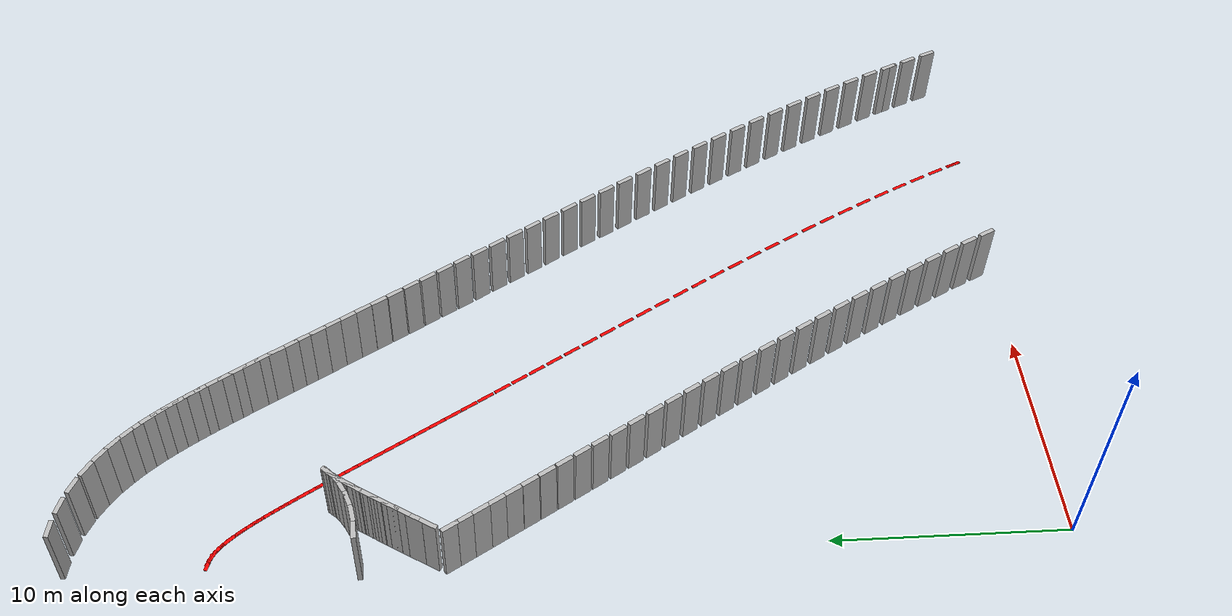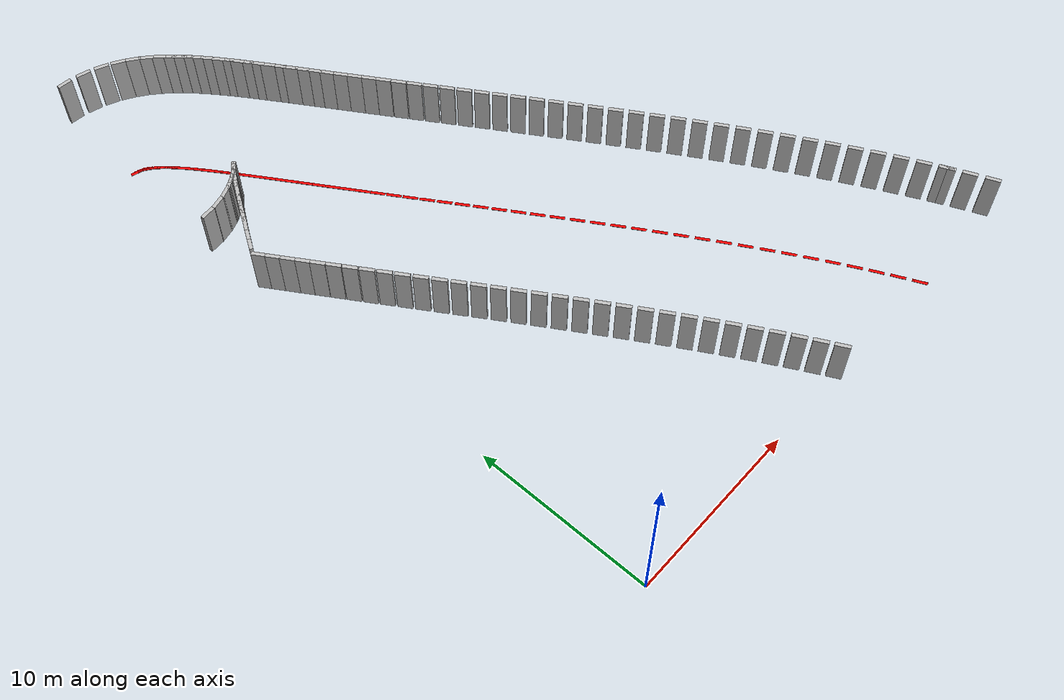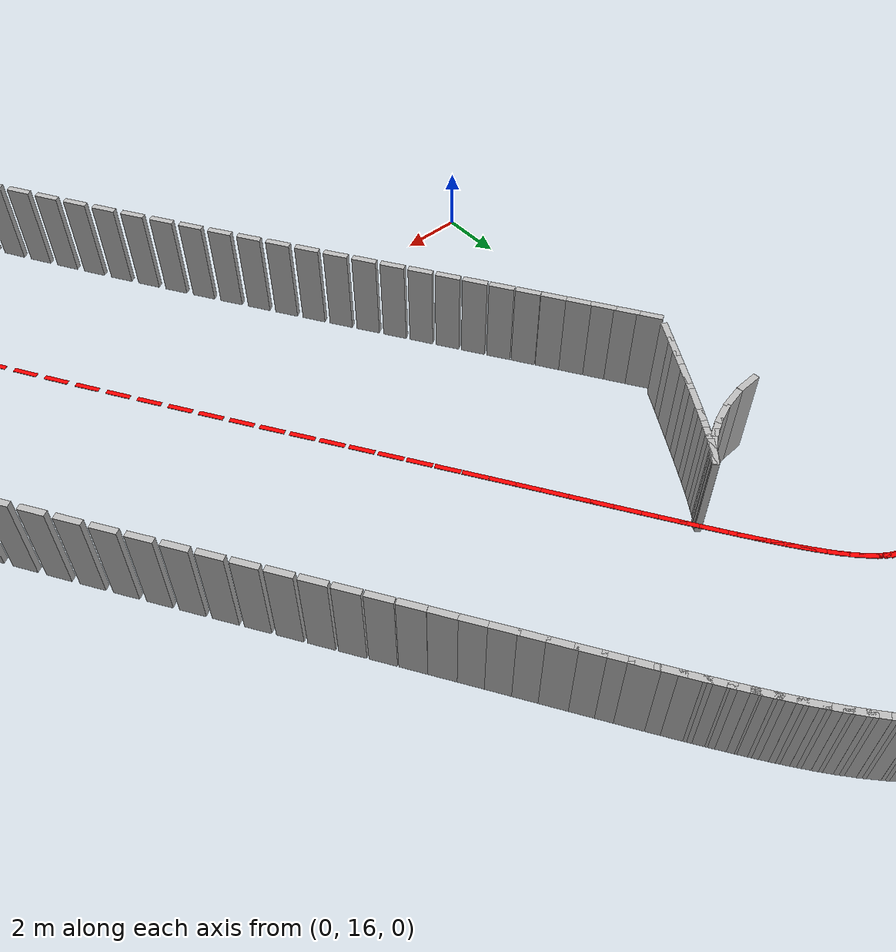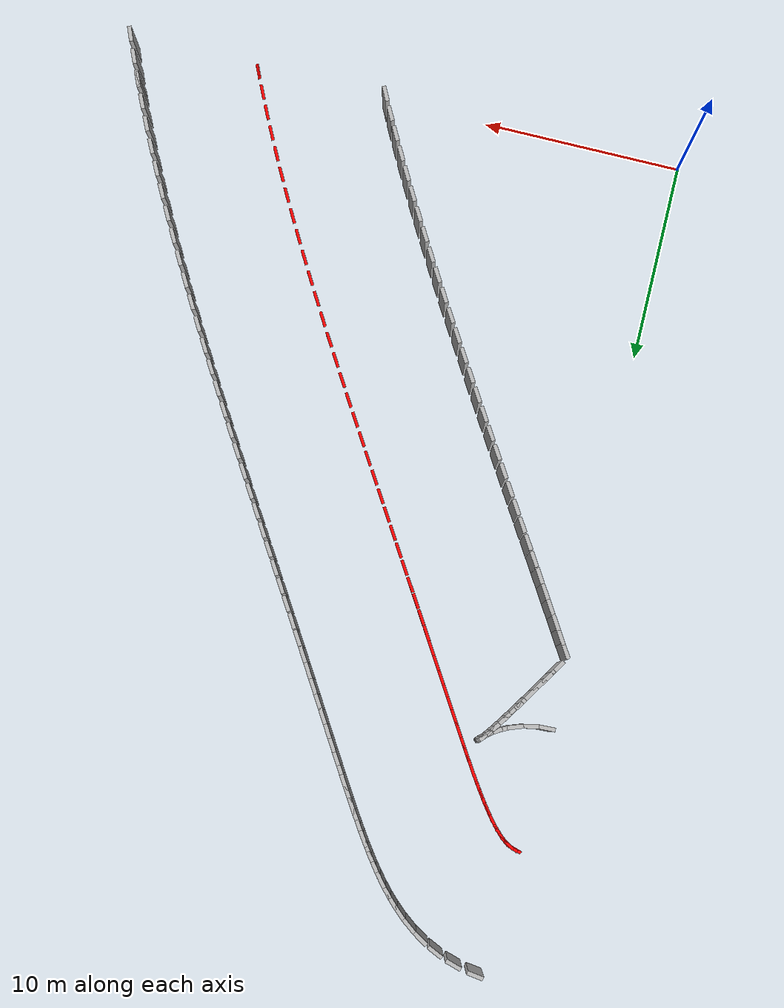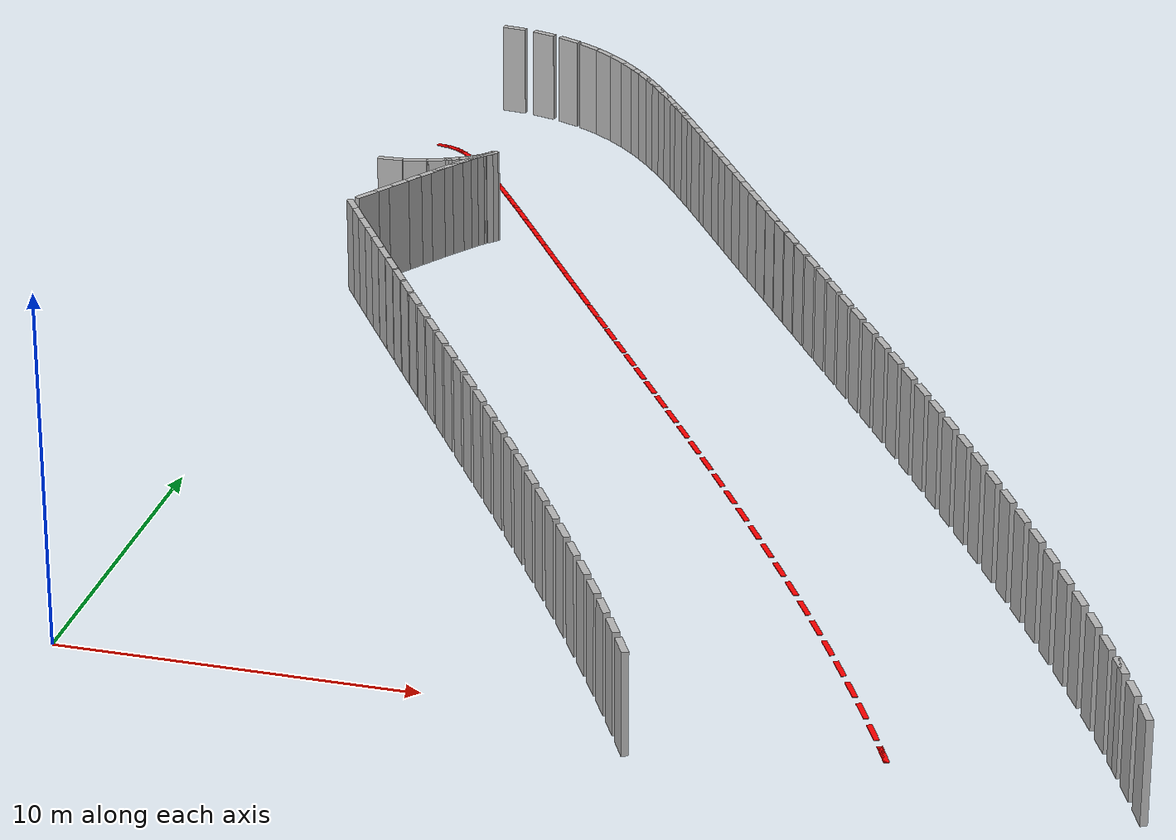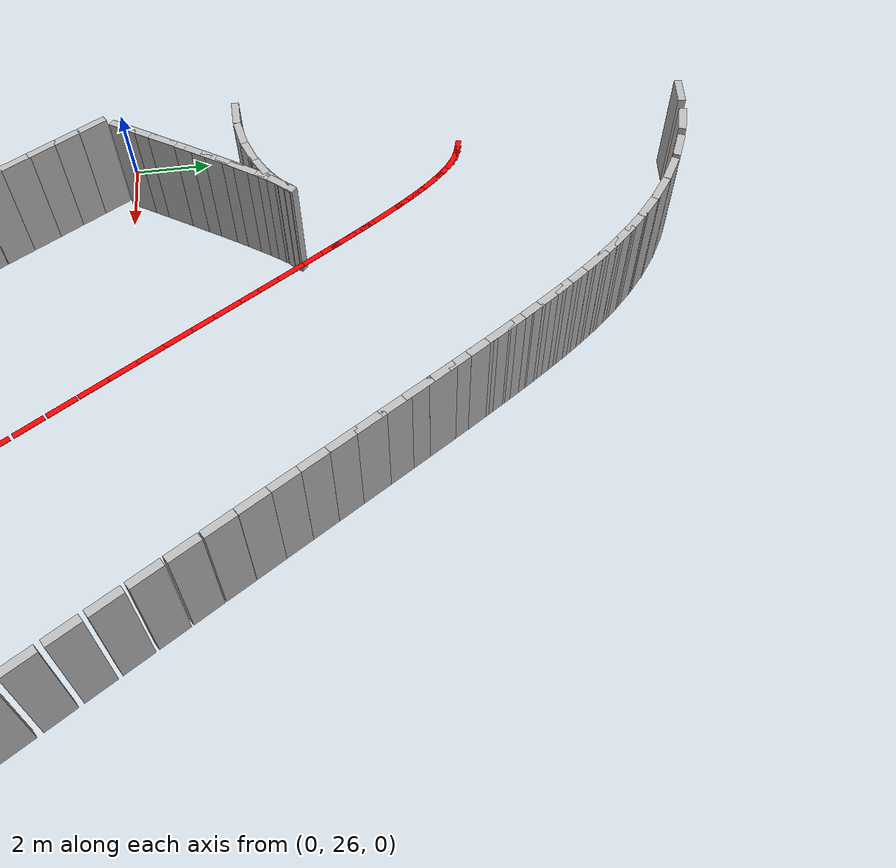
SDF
<sdf version="1.7">
 <model name="track_walls">
  <static>true</static>
  <link name="left_0">
   <pose>27.476 2.453 0.5 0 0 -1.150</pose>
   <collision name="c"><geometry><box><size>0.8 0.2 3.0</size></box></geometry></collision>
   <visual name="v"><geometry><box><size>0.8 0.2 3.0</size></box></geometry></visual>
  </link>
  <link name="center_0">
   <pose>22.000 -0.000 0.010 0 0 -1.150</pose>
   <visual name="v">
    <geometry><box><size>0.8 0.15 0.02</size></box></geometry>
    <material><ambient>1 0 0 1</ambient><diffuse>1 0 0 1</diffuse></material>
   </visual>
  </link>
  <link name="left_1">
   <pose>27.945 1.405 0.5 0 0 -1.158</pose>
   <collision name="c"><geometry><box><size>0.8 0.2 3.0</size></box></geometry></collision>
   <visual name="v"><geometry><box><size>0.8 0.2 3.0</size></box></geometry></visual>
  </link>
  <link name="left_2">
   <pose>28.415 0.310 0.5 0 0 -1.174</pose>
   <collision name="c"><geometry><box><size>0.8 0.2 3.0</size></box></geometry></collision>
   <visual name="v"><geometry><box><size>0.8 0.2 3.0</size></box></geometry></visual>
  </link>
  <link name="right_144">
   <pose>0.351 26.072 0.5 0 0 1.011</pose>
   <collision name="c"><geometry><box><size>0.8 0.2 3.0</size></box></geometry></collision>
   <visual name="v"><geometry><box><size>0.8 0.2 3.0</size></box></geometry></visual>
  </link>
  <link name="right_145">
   <pose>0.684 26.604 0.5 0 0 1.010</pose>
   <collision name="c"><geometry><box><size>0.8 0.2 3.0</size></box></geometry></collision>
   <visual name="v"><geometry><box><size>0.8 0.2 3.0</size></box></geometry></visual>
  </link>
  <link name="right_146">
   <pose>1.001 27.106 0.5 0 0 1.007</pose>
   <collision name="c"><geometry><box><size>0.8 0.2 3.0</size></box></geometry></collision>
   <visual name="v"><geometry><box><size>0.8 0.2 3.0</size></box></geometry></visual>
  </link>
  <link name="right_147">
   <pose>1.300 27.578 0.5 0 0 1.004</pose>
   <collision name="c"><geometry><box><size>0.8 0.2 3.0</size></box></geometry></collision>
   <visual name="v"><geometry><box><size>0.8 0.2 3.0</size></box></geometry></visual>
  </link>
  <link name="right_148">
   <pose>1.581 28.018 0.5 0 0 0.999</pose>
   <collision name="c"><geometry><box><size>0.8 0.2 3.0</size></box></geometry></collision>
   <visual name="v"><geometry><box><size>0.8 0.2 3.0</size></box></geometry></visual>
  </link>
  <link name="right_149">
   <pose>1.844 28.424 0.5 0 0 0.993</pose>
   <collision name="c"><geometry><box><size>0.8 0.2 3.0</size></box></geometry></collision>
   <visual name="v"><geometry><box><size>0.8 0.2 3.0</size></box></geometry></visual>
  </link>
  <link name="right_150">
   <pose>2.087 28.794 0.5 0 0 0.984</pose>
   <collision name="c"><geometry><box><size>0.8 0.2 3.0</size></box></geometry></collision>
   <visual name="v"><geometry><box><size>0.8 0.2 3.0</size></box></geometry></visual>
  </link>
  <link name="right_151">
   <pose>2.310 29.125 0.5 0 0 0.973</pose>
   <collision name="c"><geometry><box><size>0.8 0.2 3.0</size></box></geometry></collision>
   <visual name="v"><geometry><box><size>0.8 0.2 3.0</size></box></geometry></visual>
  </link>
  <link name="right_152">
   <pose>2.510 29.415 0.5 0 0 0.959</pose>
   <collision name="c"><geometry><box><size>0.8 0.2 3.0</size></box></geometry></collision>
   <visual name="v"><geometry><box><size>0.8 0.2 3.0</size></box></geometry></visual>
  </link>
  <link name="right_153">
   <pose>2.684 29.659 0.5 0 0 0.941</pose>
   <collision name="c"><geometry><box><size>0.8 0.2 3.0</size></box></geometry></collision>
   <visual name="v"><geometry><box><size>0.8 0.2 3.0</size></box></geometry></visual>
  </link>
  <link name="right_154">
   <pose>2.830 29.855 0.5 0 0 0.918</pose>
   <collision name="c"><geometry><box><size>0.8 0.2 3.0</size></box></geometry></collision>
   <visual name="v"><geometry><box><size>0.8 0.2 3.0</size></box></geometry></visual>
  </link>
  <link name="right_155">
   <pose>2.941 29.998 0.5 0 0 0.890</pose>
   <collision name="c"><geometry><box><size>0.8 0.2 3.0</size></box></geometry></collision>
   <visual name="v"><geometry><box><size>0.8 0.2 3.0</size></box></geometry></visual>
  </link>
  <link name="right_156">
   <pose>3.012 30.082 0.5 0 0 0.854</pose>
   <collision name="c"><geometry><box><size>0.8 0.2 3.0</size></box></geometry></collision>
   <visual name="v"><geometry><box><size>0.8 0.2 3.0</size></box></geometry></visual>
  </link>
  <link name="right_157">
   <pose>3.031 30.104 0.5 0 0 0.809</pose>
   <collision name="c"><geometry><box><size>0.8 0.2 3.0</size></box></geometry></collision>
   <visual name="v"><geometry><box><size>0.8 0.2 3.0</size></box></geometry></visual>
  </link>
  <link name="right_158">
   <pose>2.984 30.058 0.5 0 0 0.752</pose>
   <collision name="c"><geometry><box><size>0.8 0.2 3.0</size></box></geometry></collision>
   <visual name="v"><geometry><box><size>0.8 0.2 3.0</size></box></geometry></visual>
  </link>
  <link name="right_159">
   <pose>2.851 29.943 0.5 0 0 0.681</pose>
   <collision name="c"><geometry><box><size>0.8 0.2 3.0</size></box></geometry></collision>
   <visual name="v"><geometry><box><size>0.8 0.2 3.0</size></box></geometry></visual>
  </link>
  <link name="right_160">
   <pose>2.609 29.765 0.5 0 0 0.593</pose>
   <collision name="c"><geometry><box><size>0.8 0.2 3.0</size></box></geometry></collision>
   <visual name="v"><geometry><box><size>0.8 0.2 3.0</size></box></geometry></visual>
  </link>
  <link name="right_161">
   <pose>2.231 29.539 0.5 0 0 0.485</pose>
   <collision name="c"><geometry><box><size>0.8 0.2 3.0</size></box></geometry></collision>
   <visual name="v"><geometry><box><size>0.8 0.2 3.0</size></box></geometry></visual>
  </link>
  <link name="right_162">
   <pose>1.695 29.301 0.5 0 0 0.355</pose>
   <collision name="c"><geometry><box><size>0.8 0.2 3.0</size></box></geometry></collision>
   <visual name="v"><geometry><box><size>0.8 0.2 3.0</size></box></geometry></visual>
  </link>
  <link name="right_163">
   <pose>1.006 29.103 0.5 0 0 0.205</pose>
   <collision name="c"><geometry><box><size>0.8 0.2 3.0</size></box></geometry></collision>
   <visual name="v"><geometry><box><size>0.8 0.2 3.0</size></box></geometry></visual>
  </link>
  <link name="right_164">
   <pose>0.207 29.004 0.5 0 0 0.042</pose>
   <collision name="c"><geometry><box><size>0.8 0.2 3.0</size></box></geometry></collision>
   <visual name="v"><geometry><box><size>0.8 0.2 3.0</size></box></geometry></visual>
  </link>
  <link name="left_165">
   <pose>0.874 40.945 0.5 0 0 -0.125</pose>
   <collision name="c"><geometry><box><size>0.8 0.2 3.0</size></box></geometry></collision>
   <visual name="v"><geometry><box><size>0.8 0.2 3.0</size></box></geometry></visual>
  </link>
  <link name="left_166">
   <pose>1.973 40.719 0.5 0 0 -0.282</pose>
   <collision name="c"><geometry><box><size>0.8 0.2 3.0</size></box></geometry></collision>
   <visual name="v"><geometry><box><size>0.8 0.2 3.0</size></box></geometry></visual>
  </link>
  <link name="center_166">
   <pose>0.302 34.956 0.010 0 0 -0.282</pose>
   <visual name="v">
    <geometry><box><size>0.8 0.15 0.02</size></box></geometry>
    <material><ambient>1 0 0 1</ambient><diffuse>1 0 0 1</diffuse></material>
   </visual>
  </link>
  <link name="left_167">
   <pose>2.937 40.364 0.5 0 0 -0.422</pose>
   <collision name="c"><geometry><box><size>0.8 0.2 3.0</size></box></geometry></collision>
   <visual name="v"><geometry><box><size>0.8 0.2 3.0</size></box></geometry></visual>
  </link>
  <link name="center_167">
   <pose>0.477 34.891 0.010 0 0 -0.422</pose>
   <visual name="v">
    <geometry><box><size>0.8 0.15 0.02</size></box></geometry>
    <material><ambient>1 0 0 1</ambient><diffuse>1 0 0 1</diffuse></material>
   </visual>
  </link>
  <link name="left_168">
   <pose>3.747 39.939 0.5 0 0 -0.542</pose>
   <collision name="c"><geometry><box><size>0.8 0.2 3.0</size></box></geometry></collision>
   <visual name="v"><geometry><box><size>0.8 0.2 3.0</size></box></geometry></visual>
  </link>
  <link name="center_168">
   <pose>0.654 34.798 0.010 0 0 -0.542</pose>
   <visual name="v">
    <geometry><box><size>0.8 0.15 0.02</size></box></geometry>
    <material><ambient>1 0 0 1</ambient><diffuse>1 0 0 1</diffuse></material>
   </visual>
  </link>
  <link name="left_169">
   <pose>4.416 39.490 0.5 0 0 -0.640</pose>
   <collision name="c"><geometry><box><size>0.8 0.2 3.0</size></box></geometry></collision>
   <visual name="v"><geometry><box><size>0.8 0.2 3.0</size></box></geometry></visual>
  </link>
  <link name="center_169">
   <pose>0.835 34.675 0.010 0 0 -0.640</pose>
   <visual name="v">
    <geometry><box><size>0.8 0.15 0.02</size></box></geometry>
    <material><ambient>1 0 0 1</ambient><diffuse>1 0 0 1</diffuse></material>
   </visual>
  </link>
  <link name="left_170">
   <pose>4.971 39.041 0.5 0 0 -0.719</pose>
   <collision name="c"><geometry><box><size>0.8 0.2 3.0</size></box></geometry></collision>
   <visual name="v"><geometry><box><size>0.8 0.2 3.0</size></box></geometry></visual>
  </link>
  <link name="center_170">
   <pose>1.021 34.525 0.010 0 0 -0.719</pose>
   <visual name="v">
    <geometry><box><size>0.8 0.15 0.02</size></box></geometry>
    <material><ambient>1 0 0 1</ambient><diffuse>1 0 0 1</diffuse></material>
   </visual>
  </link>
  <link name="left_171">
   <pose>5.441 38.602 0.5 0 0 -0.782</pose>
   <collision name="c"><geometry><box><size>0.8 0.2 3.0</size></box></geometry></collision>
   <visual name="v"><geometry><box><size>0.8 0.2 3.0</size></box></geometry></visual>
  </link>
  <link name="center_171">
   <pose>1.212 34.346 0.010 0 0 -0.782</pose>
   <visual name="v">
    <geometry><box><size>0.8 0.15 0.02</size></box></geometry>
    <material><ambient>1 0 0 1</ambient><diffuse>1 0 0 1</diffuse></material>
   </visual>
  </link>
  <link name="left_172">
   <pose>5.849 38.176 0.5 0 0 -0.833</pose>
   <collision name="c"><geometry><box><size>0.8 0.2 3.0</size></box></geometry></collision>
   <visual name="v"><geometry><box><size>0.8 0.2 3.0</size></box></geometry></visual>
  </link>
  <link name="center_172">
   <pose>1.410 34.138 0.010 0 0 -0.833</pose>
   <visual name="v">
    <geometry><box><size>0.8 0.15 0.02</size></box></geometry>
    <material><ambient>1 0 0 1</ambient><diffuse>1 0 0 1</diffuse></material>
   </visual>
  </link>
  <link name="left_173">
   <pose>6.213 37.758 0.5 0 0 -0.873</pose>
   <collision name="c"><geometry><box><size>0.8 0.2 3.0</size></box></geometry></collision>
   <visual name="v"><geometry><box><size>0.8 0.2 3.0</size></box></geometry></visual>
  </link>
  <link name="center_173">
   <pose>1.615 33.903 0.010 0 0 -0.873</pose>
   <visual name="v">
    <geometry><box><size>0.8 0.15 0.02</size></box></geometry>
    <material><ambient>1 0 0 1</ambient><diffuse>1 0 0 1</diffuse></material>
   </visual>
  </link>
  <link name="left_174">
   <pose>6.547 37.346 0.5 0 0 -0.905</pose>
   <collision name="c"><geometry><box><size>0.8 0.2 3.0</size></box></geometry></collision>
   <visual name="v"><geometry><box><size>0.8 0.2 3.0</size></box></geometry></visual>
  </link>
  <link name="center_174">
   <pose>1.828 33.640 0.010 0 0 -0.905</pose>
   <visual name="v">
    <geometry><box><size>0.8 0.15 0.02</size></box></geometry>
    <material><ambient>1 0 0 1</ambient><diffuse>1 0 0 1</diffuse></material>
   </visual>
  </link>
  <link name="left_175">
   <pose>6.862 36.933 0.5 0 0 -0.930</pose>
   <collision name="c"><geometry><box><size>0.8 0.2 3.0</size></box></geometry></collision>
   <visual name="v"><geometry><box><size>0.8 0.2 3.0</size></box></geometry></visual>
  </link>
  <link name="center_175">
   <pose>2.051 33.348 0.010 0 0 -0.930</pose>
   <visual name="v">
    <geometry><box><size>0.8 0.15 0.02</size></box></geometry>
    <material><ambient>1 0 0 1</ambient><diffuse>1 0 0 1</diffuse></material>
   </visual>
  </link>
  <link name="left_176">
   <pose>7.165 36.517 0.5 0 0 -0.951</pose>
   <collision name="c"><geometry><box><size>0.8 0.2 3.0</size></box></geometry></collision>
   <visual name="v"><geometry><box><size>0.8 0.2 3.0</size></box></geometry></visual>
  </link>
  <link name="center_176">
   <pose>2.282 33.030 0.010 0 0 -0.951</pose>
   <visual name="v">
    <geometry><box><size>0.8 0.15 0.02</size></box></geometry>
    <material><ambient>1 0 0 1</ambient><diffuse>1 0 0 1</diffuse></material>
   </visual>
  </link>
  <link name="left_177">
   <pose>7.462 36.093 0.5 0 0 -0.967</pose>
   <collision name="c"><geometry><box><size>0.8 0.2 3.0</size></box></geometry></collision>
   <visual name="v"><geometry><box><size>0.8 0.2 3.0</size></box></geometry></visual>
  </link>
  <link name="center_177">
   <pose>2.525 32.684 0.010 0 0 -0.967</pose>
   <visual name="v">
    <geometry><box><size>0.8 0.15 0.02</size></box></geometry>
    <material><ambient>1 0 0 1</ambient><diffuse>1 0 0 1</diffuse></material>
   </visual>
  </link>
  <link name="left_178">
   <pose>7.758 35.659 0.5 0 0 -0.979</pose>
   <collision name="c"><geometry><box><size>0.8 0.2 3.0</size></box></geometry></collision>
   <visual name="v"><geometry><box><size>0.8 0.2 3.0</size></box></geometry></visual>
  </link>
  <link name="center_178">
   <pose>2.778 32.312 0.010 0 0 -0.979</pose>
   <visual name="v">
    <geometry><box><size>0.8 0.15 0.02</size></box></geometry>
    <material><ambient>1 0 0 1</ambient><diffuse>1 0 0 1</diffuse></material>
   </visual>
  </link>
  <link name="left_179">
   <pose>8.055 35.211 0.5 0 0 -0.989</pose>
   <collision name="c"><geometry><box><size>0.8 0.2 3.0</size></box></geometry></collision>
   <visual name="v"><geometry><box><size>0.8 0.2 3.0</size></box></geometry></visual>
  </link>
  <link name="center_179">
   <pose>3.044 31.913 0.010 0 0 -0.989</pose>
   <visual name="v">
    <geometry><box><size>0.8 0.15 0.02</size></box></geometry>
    <material><ambient>1 0 0 1</ambient><diffuse>1 0 0 1</diffuse></material>
   </visual>
  </link>
  <link name="left_180">
   <pose>8.357 34.749 0.5 0 0 -0.996</pose>
   <collision name="c"><geometry><box><size>0.8 0.2 3.0</size></box></geometry></collision>
   <visual name="v"><geometry><box><size>0.8 0.2 3.0</size></box></geometry></visual>
  </link>
  <link name="center_180">
   <pose>3.321 31.487 0.010 0 0 -0.996</pose>
   <visual name="v">
    <geometry><box><size>0.8 0.15 0.02</size></box></geometry>
    <material><ambient>1 0 0 1</ambient><diffuse>1 0 0 1</diffuse></material>
   </visual>
  </link>
  <link name="left_181">
   <pose>8.666 34.269 0.5 0 0 -1.002</pose>
   <collision name="c"><geometry><box><size>0.8 0.2 3.0</size></box></geometry></collision>
   <visual name="v"><geometry><box><size>0.8 0.2 3.0</size></box></geometry></visual>
  </link>
  <link name="center_181">
   <pose>3.611 31.036 0.010 0 0 -1.002</pose>
   <visual name="v">
    <geometry><box><size>0.8 0.15 0.02</size></box></geometry>
    <material><ambient>1 0 0 1</ambient><diffuse>1 0 0 1</diffuse></material>
   </visual>
  </link>
  <link name="left_182">
   <pose>8.982 33.771 0.5 0 0 -1.006</pose>
   <collision name="c"><geometry><box><size>0.8 0.2 3.0</size></box></geometry></collision>
   <visual name="v"><geometry><box><size>0.8 0.2 3.0</size></box></geometry></visual>
  </link>
  <link name="center_182">
   <pose>3.915 30.559 0.010 0 0 -1.006</pose>
   <visual name="v">
    <geometry><box><size>0.8 0.15 0.02</size></box></geometry>
    <material><ambient>1 0 0 1</ambient><diffuse>1 0 0 1</diffuse></material>
   </visual>
  </link>
  <link name="left_183">
   <pose>9.309 33.255 0.5 0 0 -1.009</pose>
   <collision name="c"><geometry><box><size>0.8 0.2 3.0</size></box></geometry></collision>
   <visual name="v"><geometry><box><size>0.8 0.2 3.0</size></box></geometry></visual>
  </link>
  <link name="center_183">
   <pose>4.232 30.057 0.010 0 0 -1.009</pose>
   <visual name="v">
    <geometry><box><size>0.8 0.15 0.02</size></box></geometry>
    <material><ambient>1 0 0 1</ambient><diffuse>1 0 0 1</diffuse></material>
   </visual>
  </link>
  <link name="left_184">
   <pose>9.646 32.718 0.5 0 0 -1.011</pose>
   <collision name="c"><geometry><box><size>0.8 0.2 3.0</size></box></geometry></collision>
   <visual name="v"><geometry><box><size>0.8 0.2 3.0</size></box></geometry></visual>
  </link>
  <link name="center_184">
   <pose>4.563 29.530 0.010 0 0 -1.011</pose>
   <visual name="v">
    <geometry><box><size>0.8 0.15 0.02</size></box></geometry>
    <material><ambient>1 0 0 1</ambient><diffuse>1 0 0 1</diffuse></material>
   </visual>
  </link>
  <link name="left_185">
   <pose>9.995 32.161 0.5 0 0 -1.012</pose>
   <collision name="c"><geometry><box><size>0.8 0.2 3.0</size></box></geometry></collision>
   <visual name="v"><geometry><box><size>0.8 0.2 3.0</size></box></geometry></visual>
  </link>
  <link name="center_185">
   <pose>4.908 28.979 0.010 0 0 -1.012</pose>
   <visual name="v">
    <geometry><box><size>0.8 0.15 0.02</size></box></geometry>
    <material><ambient>1 0 0 1</ambient><diffuse>1 0 0 1</diffuse></material>
   </visual>
  </link>
  <link name="left_186">
   <pose>10.356 31.584 0.5 0 0 -1.012</pose>
   <collision name="c"><geometry><box><size>0.8 0.2 3.0</size></box></geometry></collision>
   <visual name="v"><geometry><box><size>0.8 0.2 3.0</size></box></geometry></visual>
  </link>
  <link name="right_186">
   <pose>0.180 25.224 0.5 0 0 -1.012</pose>
   <collision name="c"><geometry><box><size>0.8 0.2 3.0</size></box></geometry></collision>
   <visual name="v"><geometry><box><size>0.8 0.2 3.0</size></box></geometry></visual>
  </link>
  <link name="center_186">
   <pose>5.268 28.404 0.010 0 0 -1.012</pose>
   <visual name="v">
    <geometry><box><size>0.8 0.15 0.02</size></box></geometry>
    <material><ambient>1 0 0 1</ambient><diffuse>1 0 0 1</diffuse></material>
   </visual>
  </link>
  <link name="left_187">
   <pose>10.730 30.985 0.5 0 0 -1.012</pose>
   <collision name="c"><geometry><box><size>0.8 0.2 3.0</size></box></geometry></collision>
   <visual name="v"><geometry><box><size>0.8 0.2 3.0</size></box></geometry></visual>
  </link>
  <link name="right_187">
   <pose>0.553 24.626 0.5 0 0 -1.012</pose>
   <collision name="c"><geometry><box><size>0.8 0.2 3.0</size></box></geometry></collision>
   <visual name="v"><geometry><box><size>0.8 0.2 3.0</size></box></geometry></visual>
  </link>
  <link name="center_187">
   <pose>5.642 27.806 0.010 0 0 -1.012</pose>
   <visual name="v">
    <geometry><box><size>0.8 0.15 0.02</size></box></geometry>
    <material><ambient>1 0 0 1</ambient><diffuse>1 0 0 1</diffuse></material>
   </visual>
  </link>
  <link name="left_188">
   <pose>11.117 30.365 0.5 0 0 -1.012</pose>
   <collision name="c"><geometry><box><size>0.8 0.2 3.0</size></box></geometry></collision>
   <visual name="v"><geometry><box><size>0.8 0.2 3.0</size></box></geometry></visual>
  </link>
  <link name="right_188">
   <pose>0.942 24.003 0.5 0 0 -1.012</pose>
   <collision name="c"><geometry><box><size>0.8 0.2 3.0</size></box></geometry></collision>
   <visual name="v"><geometry><box><size>0.8 0.2 3.0</size></box></geometry></visual>
  </link>
  <link name="center_188">
   <pose>6.030 27.184 0.010 0 0 -1.012</pose>
   <visual name="v">
    <geometry><box><size>0.8 0.15 0.02</size></box></geometry>
    <material><ambient>1 0 0 1</ambient><diffuse>1 0 0 1</diffuse></material>
   </visual>
  </link>
  <link name="left_189">
   <pose>11.518 29.724 0.5 0 0 -1.011</pose>
   <collision name="c"><geometry><box><size>0.8 0.2 3.0</size></box></geometry></collision>
   <visual name="v"><geometry><box><size>0.8 0.2 3.0</size></box></geometry></visual>
  </link>
  <link name="right_189">
   <pose>1.347 23.357 0.5 0 0 -1.011</pose>
   <collision name="c"><geometry><box><size>0.8 0.2 3.0</size></box></geometry></collision>
   <visual name="v"><geometry><box><size>0.8 0.2 3.0</size></box></geometry></visual>
  </link>
  <link name="center_189">
   <pose>6.432 26.541 0.010 0 0 -1.011</pose>
   <visual name="v">
    <geometry><box><size>0.8 0.15 0.02</size></box></geometry>
    <material><ambient>1 0 0 1</ambient><diffuse>1 0 0 1</diffuse></material>
   </visual>
  </link>
  <link name="left_190">
   <pose>11.933 29.062 0.5 0 0 -1.011</pose>
   <collision name="c"><geometry><box><size>0.8 0.2 3.0</size></box></geometry></collision>
   <visual name="v"><geometry><box><size>0.8 0.2 3.0</size></box></geometry></visual>
  </link>
  <link name="right_190">
   <pose>1.766 22.688 0.5 0 0 -1.011</pose>
   <collision name="c"><geometry><box><size>0.8 0.2 3.0</size></box></geometry></collision>
   <visual name="v"><geometry><box><size>0.8 0.2 3.0</size></box></geometry></visual>
  </link>
  <link name="center_190">
   <pose>6.849 25.875 0.010 0 0 -1.011</pose>
   <visual name="v">
    <geometry><box><size>0.8 0.15 0.02</size></box></geometry>
    <material><ambient>1 0 0 1</ambient><diffuse>1 0 0 1</diffuse></material>
   </visual>
  </link>
  <link name="left_191">
   <pose>12.361 28.379 0.5 0 0 -1.010</pose>
   <collision name="c"><geometry><box><size>0.8 0.2 3.0</size></box></geometry></collision>
   <visual name="v"><geometry><box><size>0.8 0.2 3.0</size></box></geometry></visual>
  </link>
  <link name="right_191">
   <pose>2.199 21.998 0.5 0 0 -1.010</pose>
   <collision name="c"><geometry><box><size>0.8 0.2 3.0</size></box></geometry></collision>
   <visual name="v"><geometry><box><size>0.8 0.2 3.0</size></box></geometry></visual>
  </link>
  <link name="center_191">
   <pose>7.280 25.189 0.010 0 0 -1.010</pose>
   <visual name="v">
    <geometry><box><size>0.8 0.15 0.02</size></box></geometry>
    <material><ambient>1 0 0 1</ambient><diffuse>1 0 0 1</diffuse></material>
   </visual>
  </link>
  <link name="left_192">
   <pose>12.804 27.675 0.5 0 0 -1.009</pose>
   <collision name="c"><geometry><box><size>0.8 0.2 3.0</size></box></geometry></collision>
   <visual name="v"><geometry><box><size>0.8 0.2 3.0</size></box></geometry></visual>
  </link>
  <link name="right_192">
   <pose>2.646 21.287 0.5 0 0 -1.009</pose>
   <collision name="c"><geometry><box><size>0.8 0.2 3.0</size></box></geometry></collision>
   <visual name="v"><geometry><box><size>0.8 0.2 3.0</size></box></geometry></visual>
  </link>
  <link name="center_192">
   <pose>7.725 24.481 0.010 0 0 -1.009</pose>
   <visual name="v">
    <geometry><box><size>0.8 0.15 0.02</size></box></geometry>
    <material><ambient>1 0 0 1</ambient><diffuse>1 0 0 1</diffuse></material>
   </visual>
  </link>
  <link name="left_193">
   <pose>13.259 26.951 0.5 0 0 -1.009</pose>
   <collision name="c"><geometry><box><size>0.8 0.2 3.0</size></box></geometry></collision>
   <visual name="v"><geometry><box><size>0.8 0.2 3.0</size></box></geometry></visual>
  </link>
  <link name="right_193">
   <pose>3.106 20.556 0.5 0 0 -1.009</pose>
   <collision name="c"><geometry><box><size>0.8 0.2 3.0</size></box></geometry></collision>
   <visual name="v"><geometry><box><size>0.8 0.2 3.0</size></box></geometry></visual>
  </link>
  <link name="center_193">
   <pose>8.183 23.753 0.010 0 0 -1.009</pose>
   <visual name="v">
    <geometry><box><size>0.8 0.15 0.02</size></box></geometry>
    <material><ambient>1 0 0 1</ambient><diffuse>1 0 0 1</diffuse></material>
   </visual>
  </link>
  <link name="left_194">
   <pose>13.729 26.207 0.5 0 0 -1.008</pose>
   <collision name="c"><geometry><box><size>0.8 0.2 3.0</size></box></geometry></collision>
   <visual name="v"><geometry><box><size>0.8 0.2 3.0</size></box></geometry></visual>
  </link>
  <link name="right_194">
   <pose>3.579 19.806 0.5 0 0 -1.008</pose>
   <collision name="c"><geometry><box><size>0.8 0.2 3.0</size></box></geometry></collision>
   <visual name="v"><geometry><box><size>0.8 0.2 3.0</size></box></geometry></visual>
  </link>
  <link name="center_194">
   <pose>8.654 23.006 0.010 0 0 -1.008</pose>
   <visual name="v">
    <geometry><box><size>0.8 0.15 0.02</size></box></geometry>
    <material><ambient>1 0 0 1</ambient><diffuse>1 0 0 1</diffuse></material>
   </visual>
  </link>
  <link name="left_195">
   <pose>14.211 25.443 0.5 0 0 -1.008</pose>
   <collision name="c"><geometry><box><size>0.8 0.2 3.0</size></box></geometry></collision>
   <visual name="v"><geometry><box><size>0.8 0.2 3.0</size></box></geometry></visual>
  </link>
  <link name="right_195">
   <pose>4.063 19.038 0.5 0 0 -1.008</pose>
   <collision name="c"><geometry><box><size>0.8 0.2 3.0</size></box></geometry></collision>
   <visual name="v"><geometry><box><size>0.8 0.2 3.0</size></box></geometry></visual>
  </link>
  <link name="center_195">
   <pose>9.137 22.240 0.010 0 0 -1.008</pose>
   <visual name="v">
    <geometry><box><size>0.8 0.15 0.02</size></box></geometry>
    <material><ambient>1 0 0 1</ambient><diffuse>1 0 0 1</diffuse></material>
   </visual>
  </link>
  <link name="left_196">
   <pose>14.706 24.659 0.5 0 0 -1.008</pose>
   <collision name="c"><geometry><box><size>0.8 0.2 3.0</size></box></geometry></collision>
   <visual name="v"><geometry><box><size>0.8 0.2 3.0</size></box></geometry></visual>
  </link>
  <link name="right_196">
   <pose>4.559 18.252 0.5 0 0 -1.008</pose>
   <collision name="c"><geometry><box><size>0.8 0.2 3.0</size></box></geometry></collision>
   <visual name="v"><geometry><box><size>0.8 0.2 3.0</size></box></geometry></visual>
  </link>
  <link name="center_196">
   <pose>9.632 21.456 0.010 0 0 -1.008</pose>
   <visual name="v">
    <geometry><box><size>0.8 0.15 0.02</size></box></geometry>
    <material><ambient>1 0 0 1</ambient><diffuse>1 0 0 1</diffuse></material>
   </visual>
  </link>
  <link name="left_197">
   <pose>15.212 23.856 0.5 0 0 -1.008</pose>
   <collision name="c"><geometry><box><size>0.8 0.2 3.0</size></box></geometry></collision>
   <visual name="v"><geometry><box><size>0.8 0.2 3.0</size></box></geometry></visual>
  </link>
  <link name="right_197">
   <pose>5.065 17.451 0.5 0 0 -1.008</pose>
   <collision name="c"><geometry><box><size>0.8 0.2 3.0</size></box></geometry></collision>
   <visual name="v"><geometry><box><size>0.8 0.2 3.0</size></box></geometry></visual>
  </link>
  <link name="center_197">
   <pose>10.139 20.654 0.010 0 0 -1.008</pose>
   <visual name="v">
    <geometry><box><size>0.8 0.15 0.02</size></box></geometry>
    <material><ambient>1 0 0 1</ambient><diffuse>1 0 0 1</diffuse></material>
   </visual>
  </link>
  <link name="left_198">
   <pose>15.731 23.035 0.5 0 0 -1.008</pose>
   <collision name="c"><geometry><box><size>0.8 0.2 3.0</size></box></geometry></collision>
   <visual name="v"><geometry><box><size>0.8 0.2 3.0</size></box></geometry></visual>
  </link>
  <link name="right_198">
   <pose>5.581 16.634 0.5 0 0 -1.008</pose>
   <collision name="c"><geometry><box><size>0.8 0.2 3.0</size></box></geometry></collision>
   <visual name="v"><geometry><box><size>0.8 0.2 3.0</size></box></geometry></visual>
  </link>
  <link name="center_198">
   <pose>10.656 19.835 0.010 0 0 -1.008</pose>
   <visual name="v">
    <geometry><box><size>0.8 0.15 0.02</size></box></geometry>
    <material><ambient>1 0 0 1</ambient><diffuse>1 0 0 1</diffuse></material>
   </visual>
  </link>
  <link name="left_199">
   <pose>16.259 22.196 0.5 0 0 -1.009</pose>
   <collision name="c"><geometry><box><size>0.8 0.2 3.0</size></box></geometry></collision>
   <visual name="v"><geometry><box><size>0.8 0.2 3.0</size></box></geometry></visual>
  </link>
  <link name="right_199">
   <pose>6.105 15.802 0.5 0 0 -1.009</pose>
   <collision name="c"><geometry><box><size>0.8 0.2 3.0</size></box></geometry></collision>
   <visual name="v"><geometry><box><size>0.8 0.2 3.0</size></box></geometry></visual>
  </link>
  <link name="center_199">
   <pose>11.182 18.999 0.010 0 0 -1.009</pose>
   <visual name="v">
    <geometry><box><size>0.8 0.15 0.02</size></box></geometry>
    <material><ambient>1 0 0 1</ambient><diffuse>1 0 0 1</diffuse></material>
   </visual>
  </link>
  <link name="left_200">
   <pose>16.798 21.340 0.5 0 0 -1.010</pose>
   <collision name="c"><geometry><box><size>0.8 0.2 3.0</size></box></geometry></collision>
   <visual name="v"><geometry><box><size>0.8 0.2 3.0</size></box></geometry></visual>
  </link>
  <link name="right_200">
   <pose>6.637 14.956 0.5 0 0 -1.010</pose>
   <collision name="c"><geometry><box><size>0.8 0.2 3.0</size></box></geometry></collision>
   <visual name="v"><geometry><box><size>0.8 0.2 3.0</size></box></geometry></visual>
  </link>
  <link name="center_200">
   <pose>11.718 18.148 0.010 0 0 -1.010</pose>
   <visual name="v">
    <geometry><box><size>0.8 0.15 0.02</size></box></geometry>
    <material><ambient>1 0 0 1</ambient><diffuse>1 0 0 1</diffuse></material>
   </visual>
  </link>
  <link name="left_201">
   <pose>17.346 20.466 0.5 0 0 -1.011</pose>
   <collision name="c"><geometry><box><size>0.8 0.2 3.0</size></box></geometry></collision>
   <visual name="v"><geometry><box><size>0.8 0.2 3.0</size></box></geometry></visual>
  </link>
  <link name="right_201">
   <pose>7.176 14.098 0.5 0 0 -1.011</pose>
   <collision name="c"><geometry><box><size>0.8 0.2 3.0</size></box></geometry></collision>
   <visual name="v"><geometry><box><size>0.8 0.2 3.0</size></box></geometry></visual>
  </link>
  <link name="center_201">
   <pose>12.261 17.282 0.010 0 0 -1.011</pose>
   <visual name="v">
    <geometry><box><size>0.8 0.15 0.02</size></box></geometry>
    <material><ambient>1 0 0 1</ambient><diffuse>1 0 0 1</diffuse></material>
   </visual>
  </link>
  <link name="left_202">
   <pose>17.902 19.577 0.5 0 0 -1.013</pose>
   <collision name="c"><geometry><box><size>0.8 0.2 3.0</size></box></geometry></collision>
   <visual name="v"><geometry><box><size>0.8 0.2 3.0</size></box></geometry></visual>
  </link>
  <link name="right_202">
   <pose>7.720 13.227 0.5 0 0 -1.013</pose>
   <collision name="c"><geometry><box><size>0.8 0.2 3.0</size></box></geometry></collision>
   <visual name="v"><geometry><box><size>0.8 0.2 3.0</size></box></geometry></visual>
  </link>
  <link name="center_202">
   <pose>12.811 16.402 0.010 0 0 -1.013</pose>
   <visual name="v">
    <geometry><box><size>0.8 0.15 0.02</size></box></geometry>
    <material><ambient>1 0 0 1</ambient><diffuse>1 0 0 1</diffuse></material>
   </visual>
  </link>
  <link name="left_203">
   <pose>18.466 18.671 0.5 0 0 -1.016</pose>
   <collision name="c"><geometry><box><size>0.8 0.2 3.0</size></box></geometry></collision>
   <visual name="v"><geometry><box><size>0.8 0.2 3.0</size></box></geometry></visual>
  </link>
  <link name="right_203">
   <pose>8.268 12.346 0.5 0 0 -1.016</pose>
   <collision name="c"><geometry><box><size>0.8 0.2 3.0</size></box></geometry></collision>
   <visual name="v"><geometry><box><size>0.8 0.2 3.0</size></box></geometry></visual>
  </link>
  <link name="center_203">
   <pose>13.367 15.508 0.010 0 0 -1.016</pose>
   <visual name="v">
    <geometry><box><size>0.8 0.15 0.02</size></box></geometry>
    <material><ambient>1 0 0 1</ambient><diffuse>1 0 0 1</diffuse></material>
   </visual>
  </link>
  <link name="left_204">
   <pose>19.035 17.750 0.5 0 0 -1.018</pose>
   <collision name="c"><geometry><box><size>0.8 0.2 3.0</size></box></geometry></collision>
   <visual name="v"><geometry><box><size>0.8 0.2 3.0</size></box></geometry></visual>
  </link>
  <link name="right_204">
   <pose>8.820 11.454 0.5 0 0 -1.018</pose>
   <collision name="c"><geometry><box><size>0.8 0.2 3.0</size></box></geometry></collision>
   <visual name="v"><geometry><box><size>0.8 0.2 3.0</size></box></geometry></visual>
  </link>
  <link name="center_204">
   <pose>13.928 14.602 0.010 0 0 -1.018</pose>
   <visual name="v">
    <geometry><box><size>0.8 0.15 0.02</size></box></geometry>
    <material><ambient>1 0 0 1</ambient><diffuse>1 0 0 1</diffuse></material>
   </visual>
  </link>
  <link name="left_205">
   <pose>19.610 16.814 0.5 0 0 -1.022</pose>
   <collision name="c"><geometry><box><size>0.8 0.2 3.0</size></box></geometry></collision>
   <visual name="v"><geometry><box><size>0.8 0.2 3.0</size></box></geometry></visual>
  </link>
  <link name="right_205">
   <pose>9.373 10.552 0.5 0 0 -1.022</pose>
   <collision name="c"><geometry><box><size>0.8 0.2 3.0</size></box></geometry></collision>
   <visual name="v"><geometry><box><size>0.8 0.2 3.0</size></box></geometry></visual>
  </link>
  <link name="center_205">
   <pose>14.492 13.683 0.010 0 0 -1.022</pose>
   <visual name="v">
    <geometry><box><size>0.8 0.15 0.02</size></box></geometry>
    <material><ambient>1 0 0 1</ambient><diffuse>1 0 0 1</diffuse></material>
   </visual>
  </link>
  <link name="left_206">
   <pose>20.189 15.864 0.5 0 0 -1.026</pose>
   <collision name="c"><geometry><box><size>0.8 0.2 3.0</size></box></geometry></collision>
   <visual name="v"><geometry><box><size>0.8 0.2 3.0</size></box></geometry></visual>
  </link>
  <link name="right_206">
   <pose>9.928 9.643 0.5 0 0 -1.026</pose>
   <collision name="c"><geometry><box><size>0.8 0.2 3.0</size></box></geometry></collision>
   <visual name="v"><geometry><box><size>0.8 0.2 3.0</size></box></geometry></visual>
  </link>
  <link name="center_206">
   <pose>15.058 12.754 0.010 0 0 -1.026</pose>
   <visual name="v">
    <geometry><box><size>0.8 0.15 0.02</size></box></geometry>
    <material><ambient>1 0 0 1</ambient><diffuse>1 0 0 1</diffuse></material>
   </visual>
  </link>
  <link name="left_207">
   <pose>20.770 14.901 0.5 0 0 -1.030</pose>
   <collision name="c"><geometry><box><size>0.8 0.2 3.0</size></box></geometry></collision>
   <visual name="v"><geometry><box><size>0.8 0.2 3.0</size></box></geometry></visual>
  </link>
  <link name="right_207">
   <pose>10.481 8.725 0.5 0 0 -1.030</pose>
   <collision name="c"><geometry><box><size>0.8 0.2 3.0</size></box></geometry></collision>
   <visual name="v"><geometry><box><size>0.8 0.2 3.0</size></box></geometry></visual>
  </link>
  <link name="center_207">
   <pose>15.626 11.813 0.010 0 0 -1.030</pose>
   <visual name="v">
    <geometry><box><size>0.8 0.15 0.02</size></box></geometry>
    <material><ambient>1 0 0 1</ambient><diffuse>1 0 0 1</diffuse></material>
   </visual>
  </link>
  <link name="left_208">
   <pose>21.353 13.925 0.5 0 0 -1.035</pose>
   <collision name="c"><geometry><box><size>0.8 0.2 3.0</size></box></geometry></collision>
   <visual name="v"><geometry><box><size>0.8 0.2 3.0</size></box></geometry></visual>
  </link>
  <link name="right_208">
   <pose>11.033 7.802 0.5 0 0 -1.035</pose>
   <collision name="c"><geometry><box><size>0.8 0.2 3.0</size></box></geometry></collision>
   <visual name="v"><geometry><box><size>0.8 0.2 3.0</size></box></geometry></visual>
  </link>
  <link name="center_208">
   <pose>16.193 10.863 0.010 0 0 -1.035</pose>
   <visual name="v">
    <geometry><box><size>0.8 0.15 0.02</size></box></geometry>
    <material><ambient>1 0 0 1</ambient><diffuse>1 0 0 1</diffuse></material>
   </visual>
  </link>
  <link name="left_209">
   <pose>21.936 12.936 0.5 0 0 -1.041</pose>
   <collision name="c"><geometry><box><size>0.8 0.2 3.0</size></box></geometry></collision>
   <visual name="v"><geometry><box><size>0.8 0.2 3.0</size></box></geometry></visual>
  </link>
  <link name="right_209">
   <pose>11.580 6.873 0.5 0 0 -1.041</pose>
   <collision name="c"><geometry><box><size>0.8 0.2 3.0</size></box></geometry></collision>
   <visual name="v"><geometry><box><size>0.8 0.2 3.0</size></box></geometry></visual>
  </link>
  <link name="center_209">
   <pose>16.758 9.904 0.010 0 0 -1.041</pose>
   <visual name="v">
    <geometry><box><size>0.8 0.15 0.02</size></box></geometry>
    <material><ambient>1 0 0 1</ambient><diffuse>1 0 0 1</diffuse></material>
   </visual>
  </link>
  <link name="left_210">
   <pose>22.517 11.936 0.5 0 0 -1.047</pose>
   <collision name="c"><geometry><box><size>0.8 0.2 3.0</size></box></geometry></collision>
   <visual name="v"><geometry><box><size>0.8 0.2 3.0</size></box></geometry></visual>
  </link>
  <link name="right_210">
   <pose>12.124 5.939 0.5 0 0 -1.047</pose>
   <collision name="c"><geometry><box><size>0.8 0.2 3.0</size></box></geometry></collision>
   <visual name="v"><geometry><box><size>0.8 0.2 3.0</size></box></geometry></visual>
  </link>
  <link name="center_210">
   <pose>17.320 8.937 0.010 0 0 -1.047</pose>
   <visual name="v">
    <geometry><box><size>0.8 0.15 0.02</size></box></geometry>
    <material><ambient>1 0 0 1</ambient><diffuse>1 0 0 1</diffuse></material>
   </visual>
  </link>
  <link name="left_211">
   <pose>23.096 10.924 0.5 0 0 -1.055</pose>
   <collision name="c"><geometry><box><size>0.8 0.2 3.0</size></box></geometry></collision>
   <visual name="v"><geometry><box><size>0.8 0.2 3.0</size></box></geometry></visual>
  </link>
  <link name="right_211">
   <pose>12.660 5.001 0.5 0 0 -1.055</pose>
   <collision name="c"><geometry><box><size>0.8 0.2 3.0</size></box></geometry></collision>
   <visual name="v"><geometry><box><size>0.8 0.2 3.0</size></box></geometry></visual>
  </link>
  <link name="center_211">
   <pose>17.878 7.963 0.010 0 0 -1.055</pose>
   <visual name="v">
    <geometry><box><size>0.8 0.15 0.02</size></box></geometry>
    <material><ambient>1 0 0 1</ambient><diffuse>1 0 0 1</diffuse></material>
   </visual>
  </link>
  <link name="left_212">
   <pose>23.672 9.902 0.5 0 0 -1.062</pose>
   <collision name="c"><geometry><box><size>0.8 0.2 3.0</size></box></geometry></collision>
   <visual name="v"><geometry><box><size>0.8 0.2 3.0</size></box></geometry></visual>
  </link>
  <link name="right_212">
   <pose>13.189 4.062 0.5 0 0 -1.062</pose>
   <collision name="c"><geometry><box><size>0.8 0.2 3.0</size></box></geometry></collision>
   <visual name="v"><geometry><box><size>0.8 0.2 3.0</size></box></geometry></visual>
  </link>
  <link name="center_212">
   <pose>18.430 6.982 0.010 0 0 -1.062</pose>
   <visual name="v">
    <geometry><box><size>0.8 0.15 0.02</size></box></geometry>
    <material><ambient>1 0 0 1</ambient><diffuse>1 0 0 1</diffuse></material>
   </visual>
  </link>
  <link name="left_213">
   <pose>24.241 8.870 0.5 0 0 -1.071</pose>
   <collision name="c"><geometry><box><size>0.8 0.2 3.0</size></box></geometry></collision>
   <visual name="v"><geometry><box><size>0.8 0.2 3.0</size></box></geometry></visual>
  </link>
  <link name="right_213">
   <pose>13.708 3.120 0.5 0 0 -1.071</pose>
   <collision name="c"><geometry><box><size>0.8 0.2 3.0</size></box></geometry></collision>
   <visual name="v"><geometry><box><size>0.8 0.2 3.0</size></box></geometry></visual>
  </link>
  <link name="center_213">
   <pose>18.975 5.995 0.010 0 0 -1.071</pose>
   <visual name="v">
    <geometry><box><size>0.8 0.15 0.02</size></box></geometry>
    <material><ambient>1 0 0 1</ambient><diffuse>1 0 0 1</diffuse></material>
   </visual>
  </link>
  <link name="left_214">
   <pose>24.804 7.828 0.5 0 0 -1.081</pose>
   <collision name="c"><geometry><box><size>0.8 0.2 3.0</size></box></geometry></collision>
   <visual name="v"><geometry><box><size>0.8 0.2 3.0</size></box></geometry></visual>
  </link>
  <link name="right_214">
   <pose>14.217 2.179 0.5 0 0 -1.081</pose>
   <collision name="c"><geometry><box><size>0.8 0.2 3.0</size></box></geometry></collision>
   <visual name="v"><geometry><box><size>0.8 0.2 3.0</size></box></geometry></visual>
  </link>
  <link name="center_214">
   <pose>19.510 5.004 0.010 0 0 -1.081</pose>
   <visual name="v">
    <geometry><box><size>0.8 0.15 0.02</size></box></geometry>
    <material><ambient>1 0 0 1</ambient><diffuse>1 0 0 1</diffuse></material>
   </visual>
  </link>
  <link name="left_215">
   <pose>25.358 6.778 0.5 0 0 -1.091</pose>
   <collision name="c"><geometry><box><size>0.8 0.2 3.0</size></box></geometry></collision>
   <visual name="v"><geometry><box><size>0.8 0.2 3.0</size></box></geometry></visual>
  </link>
  <link name="right_215">
   <pose>14.713 1.238 0.5 0 0 -1.091</pose>
   <collision name="c"><geometry><box><size>0.8 0.2 3.0</size></box></geometry></collision>
   <visual name="v"><geometry><box><size>0.8 0.2 3.0</size></box></geometry></visual>
  </link>
  <link name="center_215">
   <pose>20.035 4.008 0.010 0 0 -1.091</pose>
   <visual name="v">
    <geometry><box><size>0.8 0.15 0.02</size></box></geometry>
    <material><ambient>1 0 0 1</ambient><diffuse>1 0 0 1</diffuse></material>
   </visual>
  </link>
  <link name="left_216">
   <pose>25.902 5.718 0.5 0 0 -1.102</pose>
   <collision name="c"><geometry><box><size>0.8 0.2 3.0</size></box></geometry></collision>
   <visual name="v"><geometry><box><size>0.8 0.2 3.0</size></box></geometry></visual>
  </link>
  <link name="right_216">
   <pose>15.195 0.299 0.5 0 0 -1.102</pose>
   <collision name="c"><geometry><box><size>0.8 0.2 3.0</size></box></geometry></collision>
   <visual name="v"><geometry><box><size>0.8 0.2 3.0</size></box></geometry></visual>
  </link>
  <link name="center_216">
   <pose>20.548 3.009 0.010 0 0 -1.102</pose>
   <visual name="v">
    <geometry><box><size>0.8 0.15 0.02</size></box></geometry>
    <material><ambient>1 0 0 1</ambient><diffuse>1 0 0 1</diffuse></material>
   </visual>
  </link>
  <link name="left_217">
   <pose>26.434 4.651 0.5 0 0 -1.115</pose>
   <collision name="c"><geometry><box><size>0.8 0.2 3.0</size></box></geometry></collision>
   <visual name="v"><geometry><box><size>0.8 0.2 3.0</size></box></geometry></visual>
  </link>
  <link name="center_217">
   <pose>21.048 2.007 0.010 0 0 -1.115</pose>
   <visual name="v">
    <geometry><box><size>0.8 0.15 0.02</size></box></geometry>
    <material><ambient>1 0 0 1</ambient><diffuse>1 0 0 1</diffuse></material>
   </visual>
  </link>
  <link name="left_218">
   <pose>26.953 3.576 0.5 0 0 -1.128</pose>
   <collision name="c"><geometry><box><size>0.8 0.2 3.0</size></box></geometry></collision>
   <visual name="v"><geometry><box><size>0.8 0.2 3.0</size></box></geometry></visual>
  </link>
  <link name="center_218">
   <pose>21.532 1.004 0.010 0 0 -1.128</pose>
   <visual name="v">
    <geometry><box><size>0.8 0.15 0.02</size></box></geometry>
    <material><ambient>1 0 0 1</ambient><diffuse>1 0 0 1</diffuse></material>
   </visual>
  </link>
  <link name="left_219">
   <pose>27.439 2.534 0.5 0 0 -1.135</pose>
   <collision name="c"><geometry><box><size>0.8 0.2 3.0</size></box></geometry></collision>
   <visual name="v"><geometry><box><size>0.8 0.2 3.0</size></box></geometry></visual>
  </link>
  <link name="center_219">
   <pose>22.000 0.000 0.010 0 0 -1.135</pose>
   <visual name="v">
    <geometry><box><size>0.8 0.15 0.02</size></box></geometry>
    <material><ambient>1 0 0 1</ambient><diffuse>1 0 0 1</diffuse></material>
   </visual>
  </link>
 </model>
</sdf>
